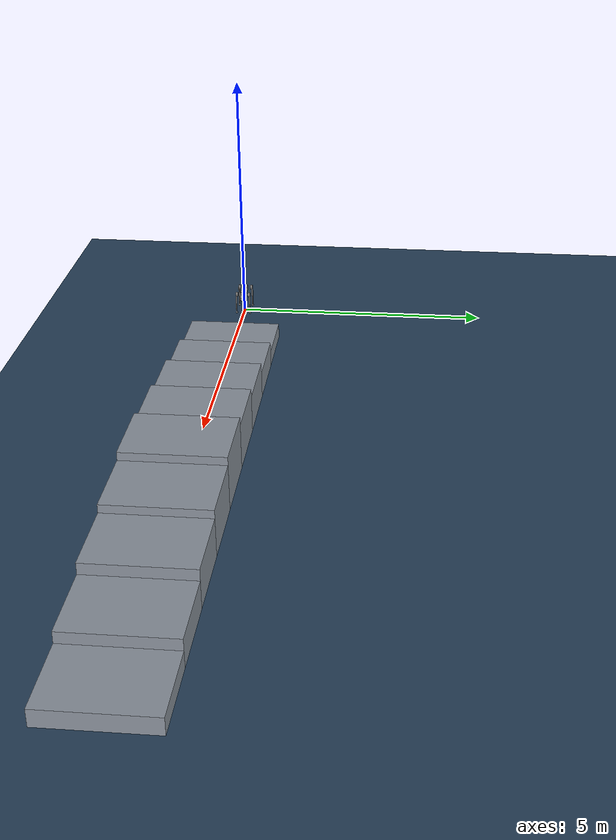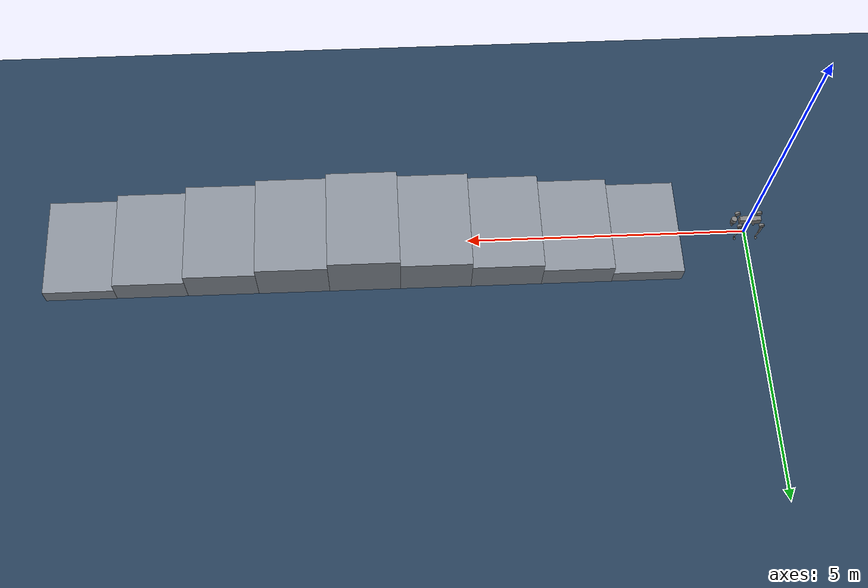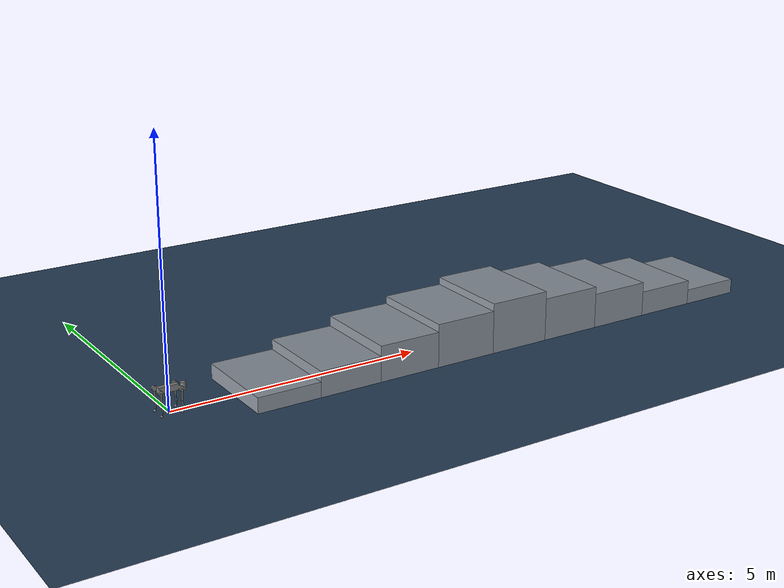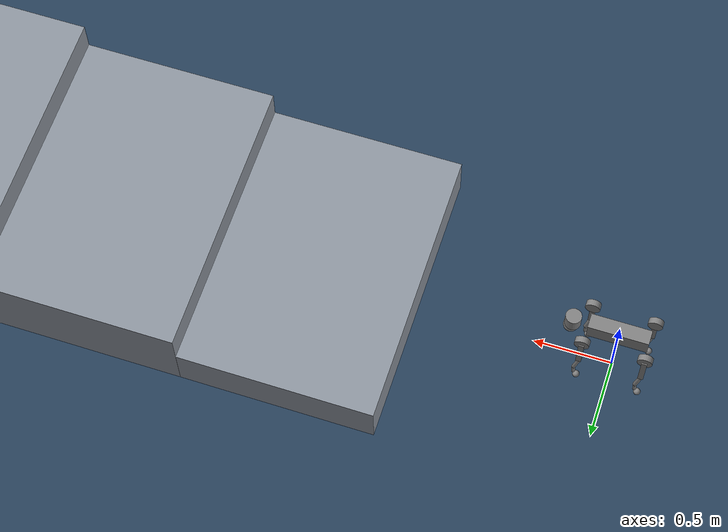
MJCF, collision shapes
<mujoco model="go2 scene">
  <include file="go2.xml" />
  <!-- High-platform terraces. top heights=0.30,0.50,0.70,0.85,1.00 m -->
  <statistic center="3 0 0.3" extent="1.2" />
  <visual>
    <headlight diffuse="0.6 0.6 0.6" ambient="0.3 0.3 0.3" specular="0 0 0" />
    <rgba haze="0.15 0.25 0.35 1" />
    <global azimuth="-130" elevation="-20" />
  </visual>
  <asset>
    <texture type="skybox" builtin="gradient" rgb1="0.3 0.5 0.7" rgb2="0 0 0" width="512" height="3072" />
    <texture type="2d" name="groundplane" builtin="checker" mark="edge" rgb1="0.2 0.3 0.4" rgb2="0.1 0.2 0.3" markrgb="0.8 0.8 0.8" width="300" height="300" />
    <material name="groundplane" texture="groundplane" texuniform="true" texrepeat="5 5" reflectance="0.0" />
    <material name="terrain" rgba="0.55 0.58 0.62 1" reflectance="0.05" />
  </asset>
  <worldbody>
    <light pos="3 0 3.0" dir="0 0 -1" directional="true" />
    <geom name="floor" size="0 0 0.05" type="plane" material="groundplane" />
    <!-- high-platform ascent: 30 cm to 100 cm -->
    <!-- platform top 0.30 m -->
    <geom name="platform_030cm_up_0" type="box" pos="1.87500 0.00000 0.15000" size="0.62500 0.90000 0.15000" quat="1.000000 0.000000 0.000000 0.000000" material="terrain" />
    <!-- platform top 0.50 m -->
    <geom name="platform_050cm_up_1" type="box" pos="3.12500 0.00000 0.25000" size="0.62500 0.90000 0.25000" quat="1.000000 0.000000 0.000000 0.000000" material="terrain" />
    <!-- platform top 0.70 m -->
    <geom name="platform_070cm_up_2" type="box" pos="4.37500 0.00000 0.35000" size="0.62500 0.90000 0.35000" quat="1.000000 0.000000 0.000000 0.000000" material="terrain" />
    <!-- platform top 0.85 m -->
    <geom name="platform_085cm_up_3" type="box" pos="5.62500 0.00000 0.42500" size="0.62500 0.90000 0.42500" quat="1.000000 0.000000 0.000000 0.000000" material="terrain" />
    <!-- platform top 1.00 m -->
    <geom name="platform_100cm_up_4" type="box" pos="6.87500 0.00000 0.50000" size="0.62500 0.90000 0.50000" quat="1.000000 0.000000 0.000000 0.000000" material="terrain" />
    <!-- mirrored descent back to the floor -->
    <geom name="platform_085cm_down_0" type="box" pos="8.12500 0.00000 0.42500" size="0.62500 0.90000 0.42500" quat="1.000000 0.000000 0.000000 0.000000" material="terrain" />
    <geom name="platform_070cm_down_1" type="box" pos="9.37500 0.00000 0.35000" size="0.62500 0.90000 0.35000" quat="1.000000 0.000000 0.000000 0.000000" material="terrain" />
    <geom name="platform_050cm_down_2" type="box" pos="10.62500 0.00000 0.25000" size="0.62500 0.90000 0.25000" quat="1.000000 0.000000 0.000000 0.000000" material="terrain" />
    <geom name="platform_030cm_down_3" type="box" pos="11.87500 0.00000 0.15000" size="0.62500 0.90000 0.15000" quat="1.000000 0.000000 0.000000 0.000000" material="terrain" />
  </worldbody>
</mujoco>

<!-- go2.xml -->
<mujoco model="go2">
  <compiler angle="radian" meshdir="assets" autolimits="true"/>

  <option cone="elliptic" impratio="100"/>

  <default>
    <default class="go2">
      <geom friction="0.6" margin="0.001" condim="1"/>
      <joint axis="0 1 0" damping="2" armature="0.01" frictionloss="0.2"/>
      <position kp="25" kv="0.5" ctrlrange="-23.7 23.7"/>
      <default class="abduction">
        <joint axis="1 0 0" range="-1.0472 1.0472"/>
      </default>
      <default class="hip">
        <default class="front_hip">
          <joint range="-1.5708 3.4907"/>
        </default>
        <default class="back_hip">
          <joint range="-0.5236 4.5379"/>
        </default>
      </default>
      <default class="knee">
        <joint range="-2.7227 -0.83776"/>
        <position kp="25" kv="0.5" ctrlrange="-45.43 45.43"/>
      </default>
      <default class="visual">
        <geom type="mesh" contype="0" conaffinity="0" group="2"/>
      </default>
      <default class="collision">
        <geom group="3"/>
        <default class="foot">
          <geom size="0.022" pos="-0.002 0 -0.213" priority="1" solimp="0.015 1 0.022" condim="6"
            friction="0.8 0.02 0.01"/>
        </default>
      </default>
    </default>
  </default>

  <asset>
    <material name="metal" rgba=".9 .95 .95 1"/>
    <material name="black" rgba="0 0 0 1"/>
    <material name="white" rgba="1 1 1 1"/>
    <material name="gray" rgba="0.671705 0.692426 0.774270 1"/>

    <mesh file="base_0.obj"/>
    <mesh file="base_1.obj"/>
    <mesh file="base_2.obj"/>
    <mesh file="base_3.obj"/>
    <mesh file="base_4.obj"/>
    <mesh file="hip_0.obj"/>
    <mesh file="hip_1.obj"/>
    <mesh file="thigh_0.obj"/>
    <mesh file="thigh_1.obj"/>
    <mesh file="thigh_mirror_0.obj"/>
    <mesh file="thigh_mirror_1.obj"/>
    <mesh file="calf_0.obj"/>
    <mesh file="calf_1.obj"/>
    <mesh file="calf_mirror_0.obj"/>
    <mesh file="calf_mirror_1.obj"/>
    <mesh file="foot.obj"/>
  </asset>

  <worldbody>
    <body name="base" pos="0 0 0.445" childclass="go2">
      <inertial pos="0.021112 0 -0.005366" quat="-0.000543471 0.713435 -0.00173769 0.700719" mass="6.921"
        diaginertia="0.107027 0.0980771 0.0244531"/>
      <freejoint/>
      <geom mesh="base_0" material="black" class="visual"/>
      <geom mesh="base_1" material="black" class="visual"/>
      <geom mesh="base_2" material="black" class="visual"/>
      <geom mesh="base_3" material="white" class="visual"/>
      <geom mesh="base_4" material="gray" class="visual"/>
      <geom size="0.1881 0.04675 0.057" type="box" class="collision"/>
      <geom size="0.05 0.045" pos="0.285 0 0.01" type="cylinder" class="collision"/>
      <geom size="0.047" pos="0.293 0 -0.06" class="collision"/>
      <site name="imu" pos="-0.02557 0 0.04232"/>
      <body name="FL_hip" pos="0.1934 0.0465 0">
        <inertial pos="-0.0054 0.00194 -0.000105" quat="0.497014 0.499245 0.505462 0.498237" mass="0.678"
          diaginertia="0.00088403 0.000596003 0.000479967"/>
        <joint name="FL_hip_joint" class="abduction"/>
        <geom mesh="hip_0" material="metal" class="visual"/>
        <geom mesh="hip_1" material="gray" class="visual"/>
        <geom size="0.046 0.02" pos="0 0.08 0" quat="1 1 0 0" type="cylinder" class="collision"/>
        <body name="FL_thigh" pos="0 0.0955 0">
          <inertial pos="-0.00374 -0.0223 -0.0327" quat="0.829533 0.0847635 -0.0200632 0.551623" mass="1.152"
            diaginertia="0.00594973 0.00584149 0.000878787"/>
          <joint name="FL_thigh_joint" class="front_hip"/>
          <geom mesh="thigh_0" material="metal" class="visual"/>
          <geom mesh="thigh_1" material="gray" class="visual"/>
          <geom size="0.1065 0.01225 0.017" pos="0 0 -0.1065" quat="0.707107 0 0.707107 0" type="box" class="collision"/>
          <body name="FL_calf" pos="0 0 -0.213">
            <inertial pos="0.00629595 -0.000622121 -0.141417" quat="0.710672 0.00154099 -0.00450087 0.703508"
              mass="0.241352" diaginertia="0.0014901 0.00146356 5.31397e-05"/>
            <joint name="FL_calf_joint" class="knee"/>
            <geom mesh="calf_0" material="gray" class="visual"/>
            <geom mesh="calf_1" material="black" class="visual"/>
            <geom size="0.012 0.06" pos="0.008 0 -0.06" quat="0.994493 0 -0.104807 0" type="cylinder" class="collision"/>
            <geom size="0.011 0.0325" pos="0.02 0 -0.148" quat="0.999688 0 0.0249974 0" type="cylinder" class="collision"/>
            <geom pos="0 0 -0.213" mesh="foot" class="visual" material="black"/>
            <geom name="FL" class="foot"/>
          </body>
        </body>
      </body>
      <body name="FR_hip" pos="0.1934 -0.0465 0">
        <inertial pos="-0.0054 -0.00194 -0.000105" quat="0.498237 0.505462 0.499245 0.497014" mass="0.678"
          diaginertia="0.00088403 0.000596003 0.000479967"/>
        <joint name="FR_hip_joint" class="abduction"/>
        <geom mesh="hip_0" material="metal" class="visual" quat="4.63268e-05 1 0 0"/>
        <geom mesh="hip_1" material="gray" class="visual" quat="4.63268e-05 1 0 0"/>
        <geom size="0.046 0.02" pos="0 -0.08 0" quat="0.707107 0.707107 0 0" type="cylinder" class="collision"/>
        <body name="FR_thigh" pos="0 -0.0955 0">
          <inertial pos="-0.00374 0.0223 -0.0327" quat="0.551623 -0.0200632 0.0847635 0.829533" mass="1.152"
            diaginertia="0.00594973 0.00584149 0.000878787"/>
          <joint name="FR_thigh_joint" class="front_hip"/>
          <geom mesh="thigh_mirror_0" material="metal" class="visual"/>
          <geom mesh="thigh_mirror_1" material="gray" class="visual"/>
          <geom size="0.1065 0.01225 0.017" pos="0 0 -0.1065" quat="0.707107 0 0.707107 0" type="box" class="collision"/>
          <body name="FR_calf" pos="0 0 -0.213">
            <inertial pos="0.00629595 0.000622121 -0.141417" quat="0.703508 -0.00450087 0.00154099 0.710672"
              mass="0.241352" diaginertia="0.0014901 0.00146356 5.31397e-05"/>
            <joint name="FR_calf_joint" class="knee"/>
            <geom mesh="calf_mirror_0" material="gray" class="visual"/>
            <geom mesh="calf_mirror_1" material="black" class="visual"/>
            <geom size="0.013 0.06" pos="0.01 0 -0.06" quat="0.995004 0 -0.0998334 0" type="cylinder" class="collision"/>
            <geom size="0.011 0.0325" pos="0.02 0 -0.148" quat="0.999688 0 0.0249974 0" type="cylinder" class="collision"/>
            <geom pos="0 0 -0.213" mesh="foot" class="visual" material="black"/>
            <geom name="FR" class="foot"/>
          </body>
        </body>
      </body>
      <body name="RL_hip" pos="-0.1934 0.0465 0">
        <inertial pos="0.0054 0.00194 -0.000105" quat="0.505462 0.498237 0.497014 0.499245" mass="0.678"
          diaginertia="0.00088403 0.000596003 0.000479967"/>
        <joint name="RL_hip_joint" class="abduction"/>
        <geom mesh="hip_0" material="metal" class="visual" quat="4.63268e-05 0 1 0"/>
        <geom mesh="hip_1" material="gray" class="visual" quat="4.63268e-05 0 1 0"/>
        <geom size="0.046 0.02" pos="0 0.08 0" quat="0.707107 0.707107 0 0" type="cylinder" class="collision"/>
        <body name="RL_thigh" pos="0 0.0955 0">
          <inertial pos="-0.00374 -0.0223 -0.0327" quat="0.829533 0.0847635 -0.0200632 0.551623" mass="1.152"
            diaginertia="0.00594973 0.00584149 0.000878787"/>
          <joint name="RL_thigh_joint" class="back_hip"/>
          <geom mesh="thigh_0" material="metal" class="visual"/>
          <geom mesh="thigh_1" material="gray" class="visual"/>
          <geom size="0.1065 0.01225 0.017" pos="0 0 -0.1065" quat="0.707107 0 0.707107 0" type="box" class="collision"/>
          <body name="RL_calf" pos="0 0 -0.213">
            <inertial pos="0.00629595 -0.000622121 -0.141417" quat="0.710672 0.00154099 -0.00450087 0.703508"
              mass="0.241352" diaginertia="0.0014901 0.00146356 5.31397e-05"/>
            <joint name="RL_calf_joint" class="knee"/>
            <geom mesh="calf_0" material="gray" class="visual"/>
            <geom mesh="calf_1" material="black" class="visual"/>
            <geom size="0.013 0.06" pos="0.01 0 -0.06" quat="0.995004 0 -0.0998334 0" type="cylinder" class="collision"/>
            <geom size="0.011 0.0325" pos="0.02 0 -0.148" quat="0.999688 0 0.0249974 0" type="cylinder" class="collision"/>
            <geom pos="0 0 -0.213" mesh="foot" class="visual" material="black"/>
            <geom name="RL" class="foot"/>
          </body>
        </body>
      </body>
      <body name="RR_hip" pos="-0.1934 -0.0465 0">
        <inertial pos="0.0054 -0.00194 -0.000105" quat="0.499245 0.497014 0.498237 0.505462" mass="0.678"
          diaginertia="0.00088403 0.000596003 0.000479967"/>
        <joint name="RR_hip_joint" class="abduction"/>
        <geom mesh="hip_0" material="metal" class="visual" quat="2.14617e-09 4.63268e-05 4.63268e-05 -1"/>
        <geom mesh="hip_1" material="gray" class="visual" quat="2.14617e-09 4.63268e-05 4.63268e-05 -1"/>
        <geom size="0.046 0.02" pos="0 -0.08 0" quat="0.707107 0.707107 0 0" type="cylinder" class="collision"/>
        <body name="RR_thigh" pos="0 -0.0955 0">
          <inertial pos="-0.00374 0.0223 -0.0327" quat="0.551623 -0.0200632 0.0847635 0.829533" mass="1.152"
            diaginertia="0.00594973 0.00584149 0.000878787"/>
          <joint name="RR_thigh_joint" class="back_hip"/>
          <geom mesh="thigh_mirror_0" material="metal" class="visual"/>
          <geom mesh="thigh_mirror_1" material="gray" class="visual"/>
          <geom size="0.1065 0.01225 0.017" pos="0 0 -0.1065" quat="0.707107 0 0.707107 0" type="box" class="collision"/>
          <body name="RR_calf" pos="0 0 -0.213">
            <inertial pos="0.00629595 0.000622121 -0.141417" quat="0.703508 -0.00450087 0.00154099 0.710672"
              mass="0.241352" diaginertia="0.0014901 0.00146356 5.31397e-05"/>
            <joint name="RR_calf_joint" class="knee"/>
            <geom mesh="calf_mirror_0" material="gray" class="visual"/>
            <geom mesh="calf_mirror_1" material="black" class="visual"/>
            <geom size="0.013 0.06" pos="0.01 0 -0.06" quat="0.995004 0 -0.0998334 0" type="cylinder" class="collision"/>
            <geom size="0.011 0.0325" pos="0.02 0 -0.148" quat="0.999688 0 0.0249974 0" type="cylinder" class="collision"/>
            <geom pos="0 0 -0.213" mesh="foot" class="visual" material="black"/>
            <geom name="RR" class="foot"/>
          </body>
        </body>
      </body>
    </body>
  </worldbody>

  <actuator>
    <position class="abduction" name="FL_hip" joint="FL_hip_joint"/>
    <position class="hip" name="FL_thigh" joint="FL_thigh_joint"/>
    <position class="knee" name="FL_calf" joint="FL_calf_joint"/>
    <position class="abduction" name="FR_hip" joint="FR_hip_joint"/>
    <position class="hip" name="FR_thigh" joint="FR_thigh_joint"/>
    <position class="knee" name="FR_calf" joint="FR_calf_joint"/>
    <position class="abduction" name="RL_hip" joint="RL_hip_joint"/>
    <position class="hip" name="RL_thigh" joint="RL_thigh_joint"/>
    <position class="knee" name="RL_calf" joint="RL_calf_joint"/>
    <position class="abduction" name="RR_hip" joint="RR_hip_joint"/>
    <position class="hip" name="RR_thigh" joint="RR_thigh_joint"/>
    <position class="knee" name="RR_calf" joint="RR_calf_joint"/>
  </actuator>

  <sensor>
        <gyro site="imu" name="gyro" />
        <accelerometer site="imu" name="accelerometer" />
        <velocimeter site="imu" name="local_linvel" />
        <framepos objtype="site" objname="imu" name="torso_pos" />
        <framezaxis objtype="site" objname="imu" name="gravity_vector" />
        <framexaxis objtype="site" objname="imu" name="torso_x_axis_vec" />
        <framexaxis objtype="site" objname="imu" name="torso_y_axis_vec" />
        <framequat objtype="site" objname="imu" name="orientation" />
        <framelinvel objtype="site" objname="imu" name="global_linvel" />
  </sensor>

  <keyframe>
    <key name="home" qpos="0 0 0.27 1 0 0 0 0 0.9 -1.8 0 0.9 -1.8 0 0.9 -1.8 0 0.9 -1.8"
      ctrl="0 0.9 -1.8 0 0.9 -1.8 0 0.9 -1.8 0 0.9 -1.8"/>
  </keyframe>
</mujoco>
